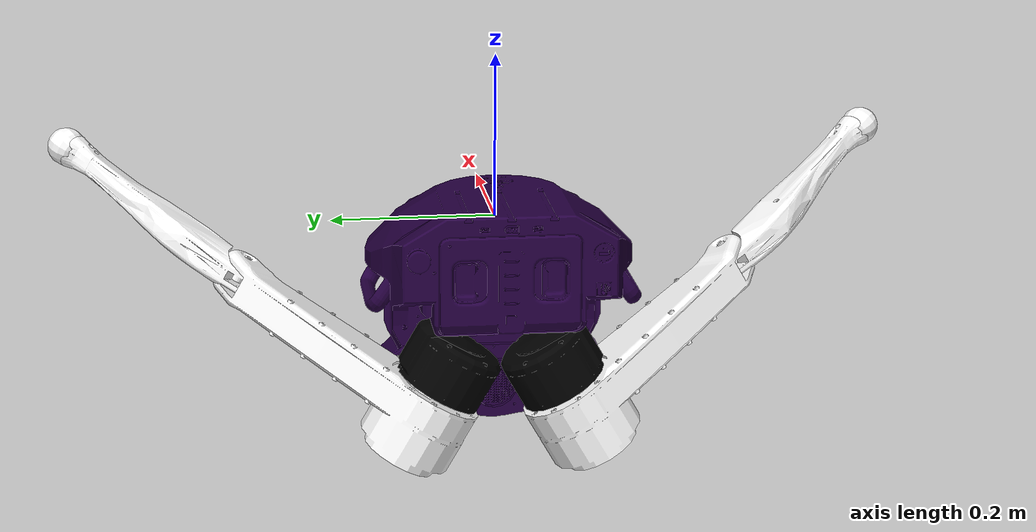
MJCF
<?xml version='1.0' encoding='utf-8'?>
<mujoco model="co_dodo_urdf">
  <compiler angle="radian" meshdir="assets" autolimits="true" />
  <default>
    <default class="visual">
      <geom contype="0" conaffinity="0" group="1" density="0" />
    </default>
  </default>
  <asset>
    <mesh name="base_link_1" content_type="model/stl" file="base_link_1.stl" />
    <mesh name="left_hip_link_1" content_type="model/stl" file="left_hip_link_1.stl" />
    <mesh name="right_hip_link_1" content_type="model/stl" file="right_hip_link_1.stl" />
    <mesh name="shank_1" content_type="model/stl" file="shank_1.stl" />
    <mesh name="shank_2" content_type="model/stl" file="shank_2.stl" />
    <mesh name="foot_ball_3" content_type="model/stl" file="foot_ball_3.stl" />
    <mesh name="foot_ball_2" content_type="model/stl" file="foot_ball_2.stl" />
    <mesh name="left_thigh_link_1" file="left_thigh_link_1.stl" />
    <mesh name="right_thigh_link_1" file="right_thigh_link_1.stl" />
  </asset>
  <worldbody>
    <body name="base_link_1" pos="0 0 0">
      <inertial pos="-0.013543112 -0.00019242008 -0.10172268" mass="8.4617237" fullinertia="0.12230776 0.11205107 0.098826889 -5.6783124e-05 0.030002261 9.6191043e-05" />
      <freejoint name="root" />
      <geom name="base_link_1_collision" type="mesh" rgba="0.147059 0 0.254902 1" mesh="base_link_1" />
      <body name="left_hip_link_1" pos="0.0171996 0.0900003 -0.218927" quat="0.683013 0.183013 -0.683013 -0.183013">
        <inertial pos="0.0471141 0.000199561 0.071513" quat="0.972643 0.000811342 0.232145 -0.00862401" mass="1.26172" diaginertia="0.00241058 0.00210193 0.00120189" />
        <joint name="LHAA" pos="0 0 0" axis="0 0 -1" range="-3.14159 0" actuatorfrcrange="-60 60" />
        <geom name="left_hip_link_1_collision" type="mesh" rgba="0 0 0 1" mesh="left_hip_link_1" />
        <body name="left_thigh_link_1" pos="0.028 0 0.081" quat="0.092296 0.701057 -0.092296 -0.701057">
          <inertial pos="0.00836508 -0.0440936 0.0497861" quat="0.381213 0.550449 -0.510538 0.539474" mass="2.77919" diaginertia="0.0254937 0.0250378 0.00382689" />
          <joint name="LHFE" pos="0 0 0" axis="0 0 -1" range="0 3.14159" actuatorfrcrange="-60 60" />
          <body name="shank_1" pos="0.0763516 -0.284948 0.028" quat="-1.24681e-08 0.5373 0.843391 -1.9571e-08">
            <inertial pos="-0.111992 -0.00440047 -0.0282888" quat="0.267925 0.666876 0.62594 0.302807" mass="0.6603" diaginertia="0.0113117 0.00787578 0.00365681" />
            <joint name="LKFE" pos="0 0 0" axis="0 0 -1" range="0 2.35619" actuatorfrcrange="-100 100" />
            <geom name="shank_1_collision" type="mesh" rgba="1 1 1 1" mesh="shank_1" />
            <geom name="foot_ball_3_collision" pos="-0.320451 -0.0115402 0.0001" quat="0.677988 -0.200829 0.677988 0.200829" type="mesh" rgba="1 1 1 1" mesh="foot_ball_3" />
          </body>
          <geom name="left_thigh_link_1_visual" type="mesh" mesh="left_thigh_link_1" rgba="1 1 1 1" class="visual" contype="0" conaffinity="0" group="1" />
        </body>
      </body>
      <body name="right_hip_link_1" pos="0.0171996 -0.0899997 -0.218927" quat="0.683013 -0.183013 -0.683013 0.183013">
        <inertial pos="0.0470541 -0.00047283 0.0712582" quat="0.973118 -0.00237946 0.229216 0.0222478" mass="1.26572" diaginertia="0.00241891 0.00209968 0.0012123" />
        <joint name="RHAA" pos="0 0 0" axis="0 0 -1" range="0 3.14159" actuatorfrcrange="-60 60" />
        <geom name="right_hip_link_1_collision" type="mesh" rgba="0 0 0 1" mesh="right_hip_link_1" />
        <body name="right_thigh_link_1" pos="0.028 0 0.081" quat="0.092296 0.701057 -0.092296 -0.701057">
          <inertial pos="0.0295636 0.0340952 0.0498464" quat="0.664618 0.227926 -0.619843 0.349468" mass="2.77287" diaginertia="0.0255359 0.0250801 0.00381013" />
          <joint name="RHFE" pos="0 0 0" axis="0 0 -1" range="-3.14159 0" actuatorfrcrange="-60 60" />
          <body name="shank_2" pos="0.208596 0.208596 0.028" quat="-6.97791e-09 -0.300706 0.953717 2.21311e-08">
            <inertial pos="-0.112009 0.0043973 -0.028978" quat="0.291439 0.631316 0.671212 0.256861" mass="0.6603" diaginertia="0.0115962 0.00805688 0.00375996" />
            <joint name="RKFE" pos="0 0 0" axis="0 0 -1" range="-2.35619 0" actuatorfrcrange="-100 100" />
            <geom name="shank_2_collision" type="mesh" rgba="1 1 1 1" mesh="shank_2" />
            <geom name="foot_ball_2_collision" pos="-0.320451 0.0115402 -0.0001" quat="0.677988 -0.200829 -0.677988 -0.200829" type="mesh" rgba="1 1 1 1" mesh="foot_ball_2" />
          </body>
          <geom name="right_thigh_link_1_visual" type="mesh" mesh="right_thigh_link_1" rgba="1 1 1 1" class="visual" contype="0" conaffinity="0" group="1" />
        </body>
      </body>
      <site name="imu" pos="0 0 0" size="0.01" />
    </body>
  </worldbody>
  <sensor>
    <gyro name="imu_ang_vel" site="imu" />
  </sensor>
  <actuator>
    <position name="LHAA" joint="LHAA" kp="42.0" kv="2.5" forcerange="-60.0 60.0" ctrlrange="-3.14159 0" />
    <position name="LHFE" joint="LHFE" kp="42.0" kv="2.5" forcerange="-60.0 60.0" ctrlrange="0 3.14159" />
    <position name="LKFE" joint="LKFE" kp="42.0" kv="2.5" forcerange="-100.0 100.0" ctrlrange="0 2.35619" />
    <position name="RHAA" joint="RHAA" kp="42.0" kv="2.5" forcerange="-60.0 60.0" ctrlrange="0 3.14159" />
    <position name="RHFE" joint="RHFE" kp="42.0" kv="2.5" forcerange="-60.0 60.0" ctrlrange="-3.14159 0" />
    <position name="RKFE" joint="RKFE" kp="42.0" kv="2.5" forcerange="-100.0 100.0" ctrlrange="-2.35619 0" />
  </actuator>
</mujoco>
